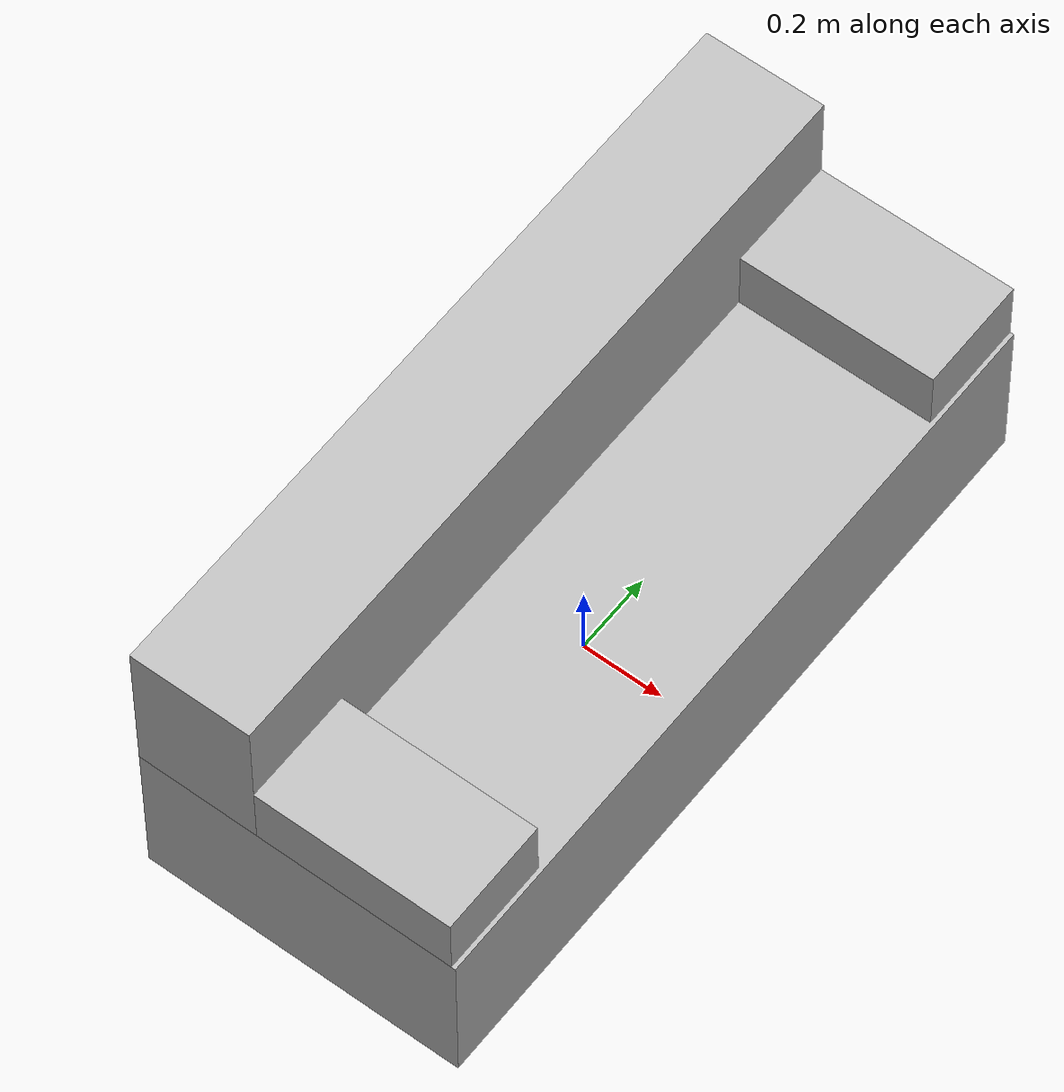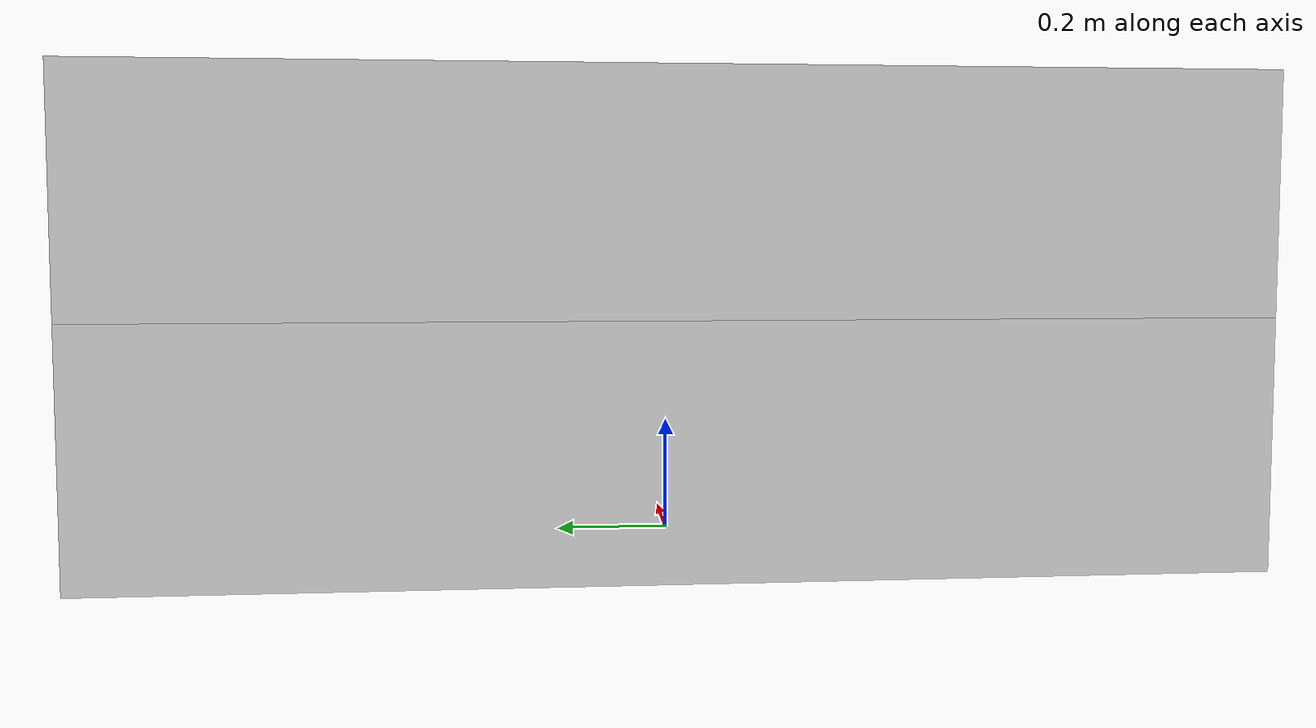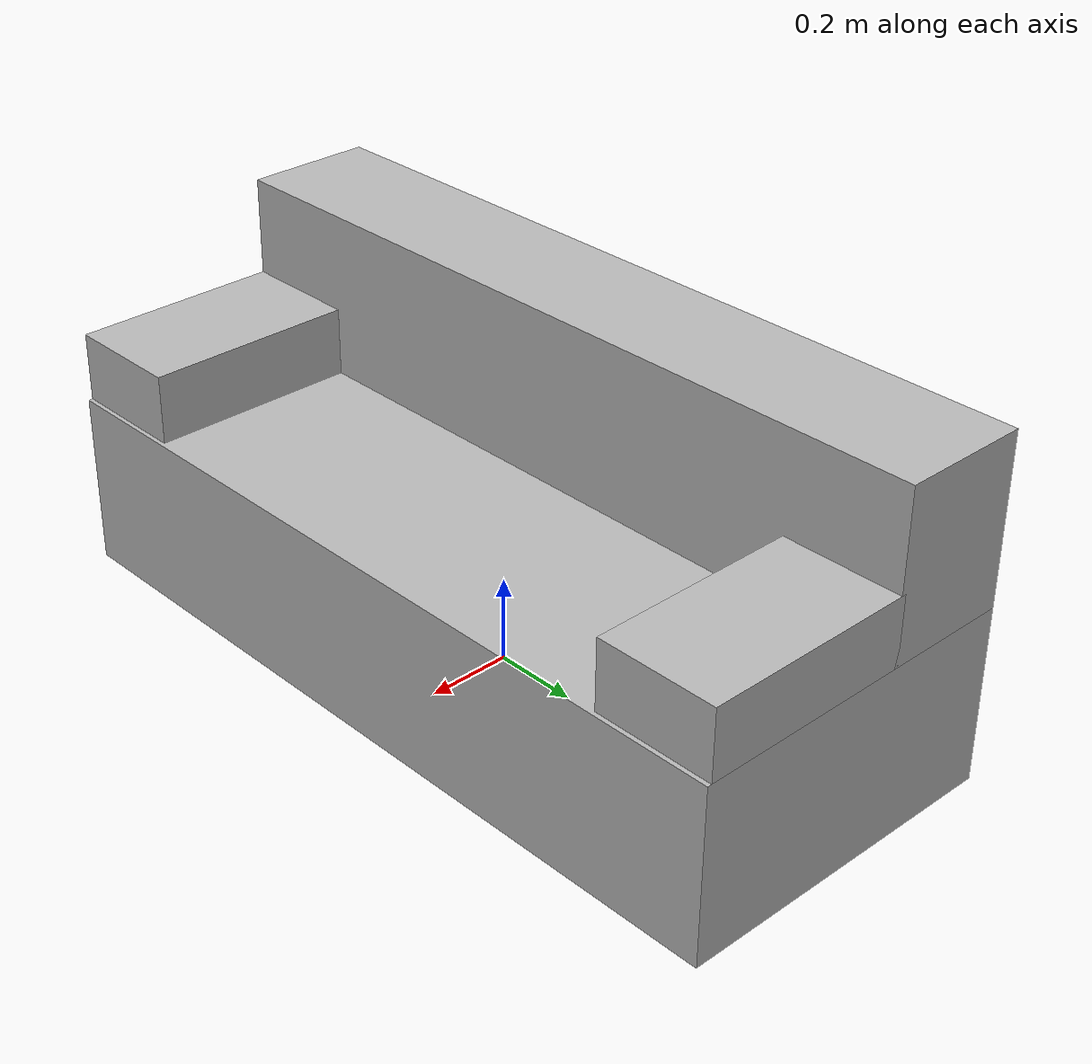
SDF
<?xml version="1.0" ?>
<sdf version="1.6">
  <model name="rwc2022/couch">
    <static>true</static>
    <link name="1_link">
      <collision name="1_col">
        <geometry>
          <box>
            <size>0.8 1.88 0.41</size>
          </box>
        </geometry>
      </collision>
      <visual name="1_vis">
        <geometry>
          <box>
            <size>0.8 1.88 0.41</size>
          </box>
        </geometry>
      </visual>
      <pose>0.0 0.0 0.205 0 0 0</pose>
    </link>
    <link name="back_link">
      <collision name="back_col">
        <geometry>
          <box>
            <size>0.3 1.88 0.39</size>
          </box>
        </geometry>
      </collision>
      <visual name="back_vis">
        <geometry>
          <box>
            <size>0.3 1.88 0.39</size>
          </box>
        </geometry>
      </visual>
      <pose>-0.25 0.0 0.605 0 0 0</pose>
    </link>
    <link name="side_L_link">
      <collision name="side_L_col">
        <geometry>
          <box>
            <size>0.50 0.28 0.16</size>
          </box>
        </geometry>
      </collision>
      <visual name="side_L_vis">
        <geometry>
          <box>
            <size>0.50 0.28 0.16</size>
          </box>
        </geometry>
      </visual>
      <pose>0.14 -0.8 0.49 0 0 0</pose>
    </link>
    <link name="side_R_link">
      <collision name="side_L_col">
        <geometry>
          <box>
            <size>0.50 0.28 0.16</size>
          </box>
        </geometry>
      </collision>
      <visual name="side_R_vis">
        <geometry>
          <box>
            <size>0.50 0.28 0.16</size>
          </box>
        </geometry>
      </visual>
      <pose>0.14 0.8 0.49 0 0 0</pose>
    </link>
    <link name="on_top_of_l">
      <virtual_volume name="on_top_of_l_vv">
        <geometry>
          <box>
            <size>0.46 0.4 0.25</size>
          </box>
        </geometry>
        <pose>0.15 -0.44 0.6 0 0 0</pose>
      </virtual_volume>
    </link>
    <link name="on_top_of_m">
      <virtual_volume name="on_top_of_m_vv">
        <geometry>
          <box>
            <size>0.46 0.4 0.25</size>
          </box>
        </geometry>
        <pose>0.15 0.0 0.6 0 0 0</pose>
      </virtual_volume>
    </link>
    <link name="on_top_of_r">
      <virtual_volume name="on_top_of_r_vv">
        <geometry>
          <box>
            <size>0.46 0.4 0.25</size>
          </box>
        </geometry>
        <pose>0.15 0.44 0.6 0 0 0</pose>
      </virtual_volume>
    </link>
    <link name="in_front_of">
      <virtual_volume name="in_front_of_vv">
        <geometry>
          <box>
            <size>0.2 1.68 0.01</size>
          </box>
        </geometry>
        <pose>0.9 0.0 0.005 0 0 0</pose>
      </virtual_volume>
    </link>
  </model>
</sdf>
